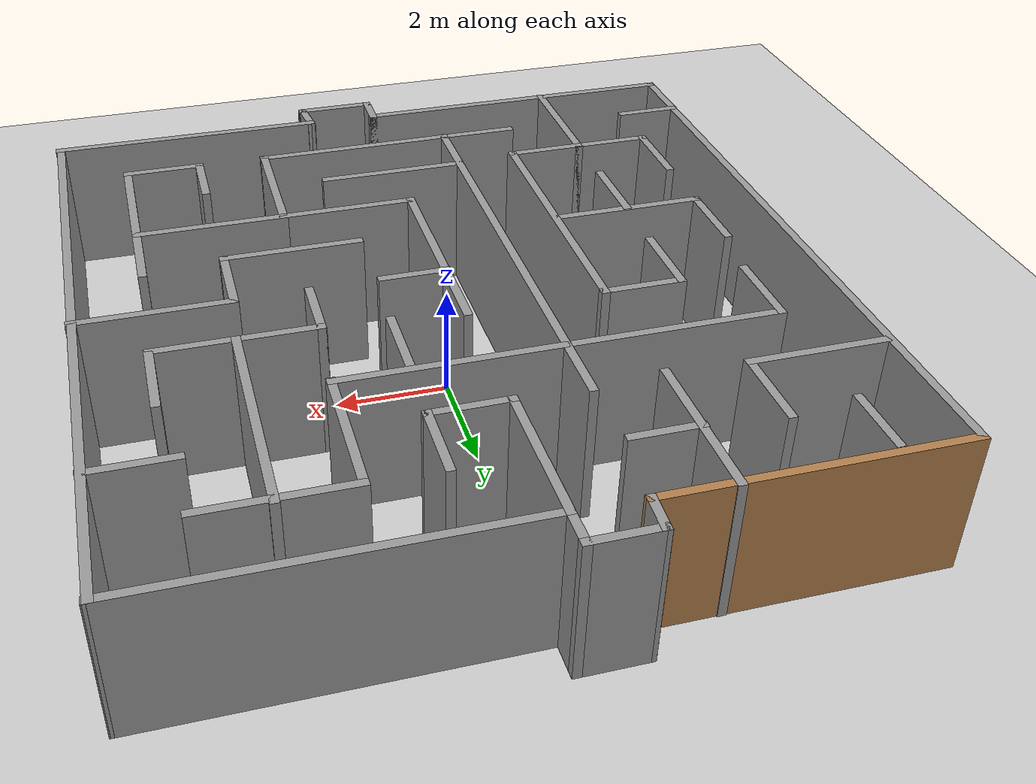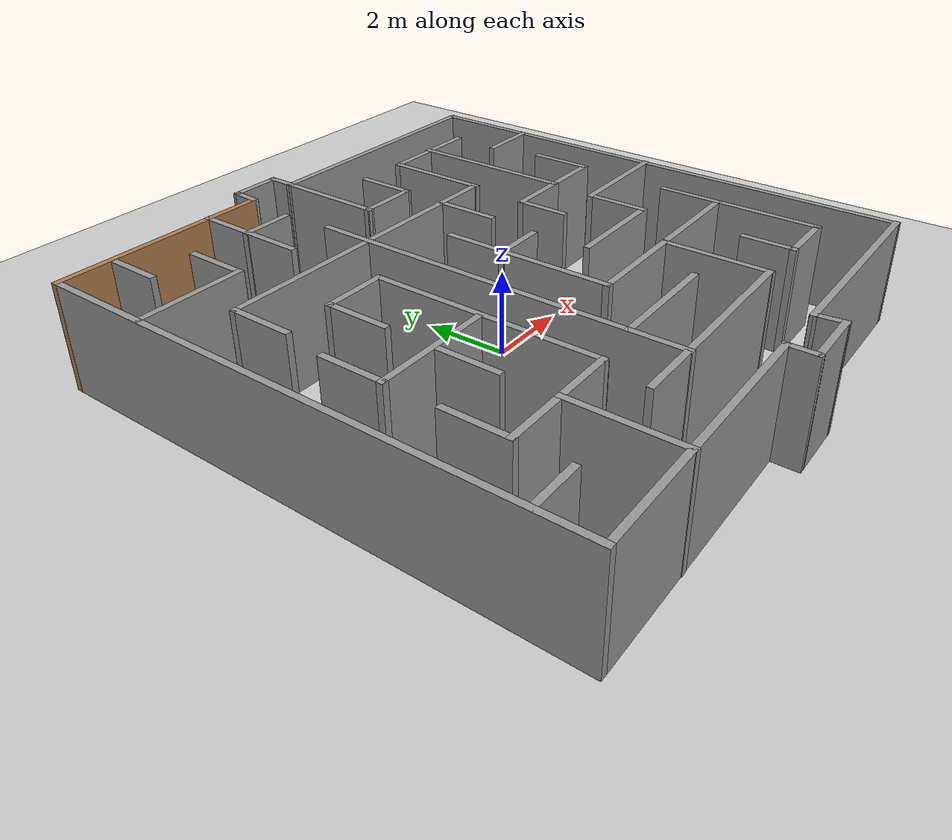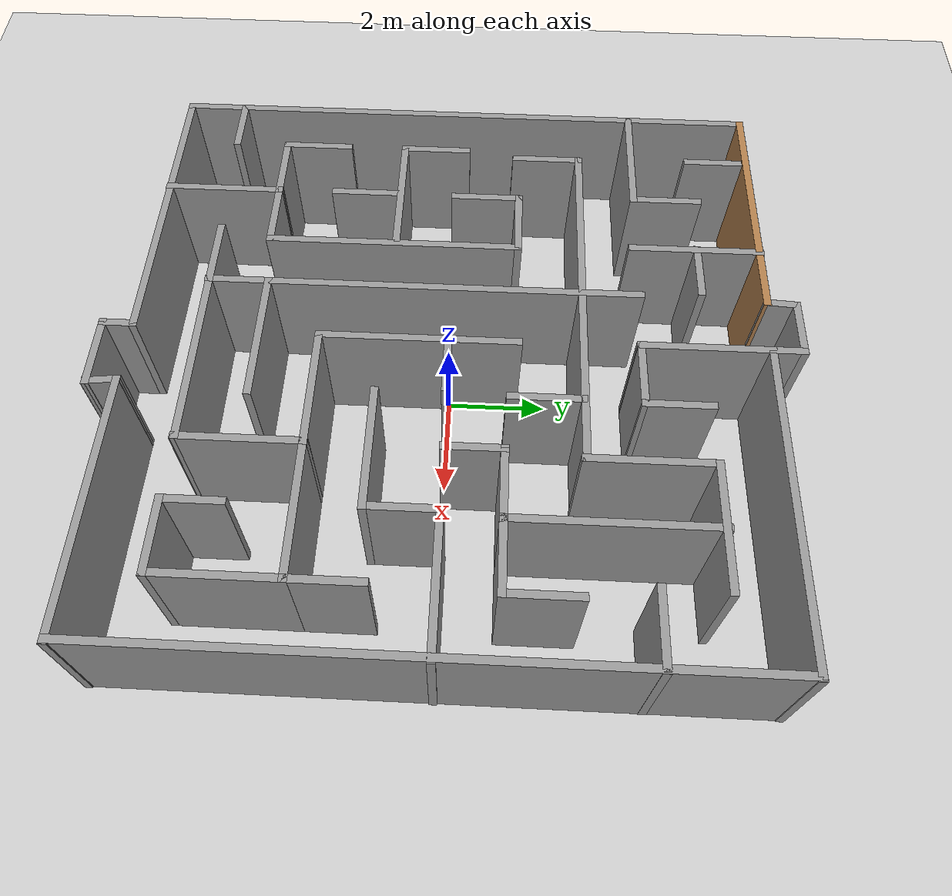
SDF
<sdf version="1.7">
 <world name="default">
  <light name="sun" type="directional">
   <pose>0 0 10 0 -0 0</pose>
   <diffuse>0.8 0.8 0.8 1</diffuse>
   <specular>0.2 0.2 0.2 1</specular>
   <attenuation>
    <range>1000</range>
    <constant>0.9</constant>
    <linear>0.01</linear>
    <quadratic>0.001</quadratic>
   </attenuation>
   <direction>-0.5 0.1 -0.9</direction>
   <spot><inner_angle>0</inner_angle><outer_angle>0</outer_angle><falloff>0</falloff></spot>
  </light>
  <model name="ground_plane">
   <static>1</static>
   <link name="link">
    <collision name="collision">
     <geometry><plane><normal>0 0 1</normal><size>100 100</size></plane></geometry>
     <surface>
      <contact><collide_bitmask>65535</collide_bitmask></contact>
      <friction><ode><mu>100</mu><mu2>50</mu2></ode></friction>
     </surface>
    </collision>
    <visual name="visual">
     <cast_shadows>0</cast_shadows>
     <geometry><plane><normal>0 0 1</normal><size>100 100</size></plane></geometry>
     <material>
      <script><uri>file://media/materials/scripts/gazebo.material</uri><name>Gazebo/Grey</name></script>
     </material>
    </visual>
   </link>
  </model>
  <gravity>0 0 -9.8</gravity>
  <magnetic_field>6e-06 2.3e-05 -4.2e-05</magnetic_field>
  <atmosphere type="adiabatic"/>
  <physics type="ode">
   <max_step_size>0.001</max_step_size>
   <real_time_factor>1</real_time_factor>
   <real_time_update_rate>1000</real_time_update_rate>
  </physics>
  <scene><ambient>0.4 0.4 0.4 1</ambient><background>0.7 0.7 0.7 1</background><shadows>1</shadows></scene>
  <spherical_coordinates>
   <surface_model>EARTH_WGS84</surface_model>
   <latitude_deg>0</latitude_deg>
   <longitude_deg>0</longitude_deg>
   <elevation>0</elevation>
   <heading_deg>0</heading_deg>
  </spherical_coordinates>
  <model name="maze">
   <pose>0.005745 0.020162 0 0 -0 0</pose>
   <link name="Wall_0">
    <collision name="Wall_0_Collision">
     <geometry><box><size>5.15 0.15 2.5</size></box></geometry>
     <pose>0 0 1.25 0 -0 0</pose>
    </collision>
    <visual name="Wall_0_Visual">
     <pose>0 0 1.25 0 -0 0</pose>
     <geometry><box><size>5.15 0.15 2.5</size></box></geometry>
     <material>
      <script><uri>file://media/materials/scripts/gazebo.material</uri><name>Gazebo/Wood</name></script>
      <ambient>1 1 1 1</ambient>
     </material>
     <meta><layer>0</layer></meta>
    </visual>
    <pose>-3.67374 6.19284 0 0 -0 3.14159</pose>
   </link>
   <link name="Wall_14">
    <collision name="Wall_14_Collision">
     <geometry><box><size>1.45136 0.15 2.5</size></box></geometry>
     <pose>0 0 1.25 0 -0 0</pose>
    </collision>
    <visual name="Wall_14_Visual">
     <pose>0 0 1.25 0 -0 0</pose>
     <geometry><box><size>1.45136 0.15 2.5</size></box></geometry>
     <material>
      <script><uri>file://media/materials/scripts/gazebo.material</uri><name>Gazebo/Grey</name></script>
      <ambient>1 1 1 1</ambient>
     </material>
     <meta><layer>0</layer></meta>
    </visual>
    <pose>0.612755 3.66384 0 0 -0 -3.13698</pose>
   </link>
   <link name="Wall_18">
    <collision name="Wall_18_Collision">
     <geometry><box><size>1.4 0.15 2.5</size></box></geometry>
     <pose>0 0 1.25 0 -0 0</pose>
    </collision>
    <visual name="Wall_18_Visual">
     <pose>0 0 1.25 0 -0 0</pose>
     <geometry><box><size>1.4 0.15 2.5</size></box></geometry>
     <material>
      <script><uri>file://media/materials/scripts/gazebo.material</uri><name>Gazebo/Grey</name></script>
      <ambient>1 1 1 1</ambient>
     </material>
     <meta><layer>0</layer></meta>
    </visual>
    <pose>1.26326 4.29184 0 0 -0 1.5708</pose>
   </link>
   <link name="Wall_2">
    <collision name="Wall_2_Collision">
     <geometry><box><size>12.5 0.15 2.5</size></box></geometry>
     <pose>0 0 1.25 0 -0 0</pose>
    </collision>
    <visual name="Wall_2_Visual">
     <pose>0 0 1.25 0 -0 0</pose>
     <geometry><box><size>12.5 0.15 2.5</size></box></geometry>
     <material>
      <script><uri>file://media/materials/scripts/gazebo.material</uri><name>Gazebo/Grey</name></script>
      <ambient>1 1 1 1</ambient>
     </material>
     <meta><layer>0</layer></meta>
    </visual>
    <pose>-6.17375 0.017838 0 0 -0 -1.5708</pose>
   </link>
   <link name="Wall_20">
    <collision name="Wall_20_Collision">
     <geometry><box><size>2.51779 0.15 2.5</size></box></geometry>
     <pose>0 0 1.25 0 -0 0</pose>
    </collision>
    <visual name="Wall_20_Visual">
     <pose>0 0 1.25 0 -0 0</pose>
     <geometry><box><size>2.51779 0.15 2.5</size></box></geometry>
     <material>
      <script><uri>file://media/materials/scripts/gazebo.material</uri><name>Gazebo/Grey</name></script>
      <ambient>1 1 1 1</ambient>
     </material>
     <meta><layer>0</layer></meta>
    </visual>
    <pose>3.63945 4.91217 0 0 -0 0</pose>
   </link>
   <link name="Wall_22">
    <collision name="Wall_22_Collision">
     <geometry><box><size>2.5 0.15 2.5</size></box></geometry>
     <pose>0 0 1.25 0 -0 0</pose>
    </collision>
    <visual name="Wall_22_Visual">
     <pose>0 0 1.25 0 -0 0</pose>
     <geometry><box><size>2.5 0.15 2.5</size></box></geometry>
     <material>
      <script><uri>file://media/materials/scripts/gazebo.material</uri><name>Gazebo/Grey</name></script>
      <ambient>1 1 1 1</ambient>
     </material>
     <meta><layer>0</layer></meta>
    </visual>
    <pose>2.45556 3.71938 0 0 -0 -1.5708</pose>
   </link>
   <link name="Wall_23">
    <collision name="Wall_23_Collision">
     <geometry><box><size>7.48221 0.15 2.5</size></box></geometry>
     <pose>0 0 1.25 0 -0 0</pose>
    </collision>
    <visual name="Wall_23_Visual">
     <pose>0 0 1.25 0 -0 0</pose>
     <geometry><box><size>7.48221 0.15 2.5</size></box></geometry>
     <material>
      <script><uri>file://media/materials/scripts/gazebo.material</uri><name>Gazebo/Grey</name></script>
      <ambient>1 1 1 1</ambient>
     </material>
     <meta><layer>0</layer></meta>
    </visual>
    <pose>-1.21055 2.56217 0 0 -0 3.14159</pose>
   </link>
   <link name="Wall_24">
    <collision name="Wall_24_Collision">
     <geometry><box><size>1.5 0.15 2.5</size></box></geometry>
     <pose>0 0 1.25 0 -0 0</pose>
    </collision>
    <visual name="Wall_24_Visual">
     <pose>0 0 1.25 0 -0 0</pose>
     <geometry><box><size>1.5 0.15 2.5</size></box></geometry>
     <material>
      <script><uri>file://media/materials/scripts/gazebo.material</uri><name>Gazebo/Grey</name></script>
      <ambient>1 1 1 1</ambient>
     </material>
     <meta><layer>0</layer></meta>
    </visual>
    <pose>-4.87665 1.88717 0 0 -0 -1.5708</pose>
   </link>
   <link name="Wall_26">
    <collision name="Wall_26_Collision">
     <geometry><box><size>8.76779 0.15 2.5</size></box></geometry>
     <pose>0 0 1.25 0 -0 0</pose>
    </collision>
    <visual name="Wall_26_Visual">
     <pose>0 0 1.25 0 -0 0</pose>
     <geometry><box><size>8.76779 0.15 2.5</size></box></geometry>
     <material>
      <script><uri>file://media/materials/scripts/gazebo.material</uri><name>Gazebo/Grey</name></script>
      <ambient>1 1 1 1</ambient>
     </material>
     <meta><layer>0</layer></meta>
    </visual>
    <pose>-1.24484 -0.588678 0 0 -0 -1.5708</pose>
   </link>
   <link name="Wall_27">
    <collision name="Wall_27_Collision">
     <geometry><box><size>3.75018 0.15 2.5</size></box></geometry>
     <pose>0 0 1.25 0 -0 0</pose>
    </collision>
    <visual name="Wall_27_Visual">
     <pose>0 0 1.25 0 -0 0</pose>
     <geometry><box><size>3.75018 0.15 2.5</size></box></geometry>
     <material>
      <script><uri>file://media/materials/scripts/gazebo.material</uri><name>Gazebo/Grey</name></script>
      <ambient>1 1 1 1</ambient>
     </material>
     <meta><layer>0</layer></meta>
    </visual>
    <pose>0.555157 -4.87089 0 0 -0 0.004942</pose>
   </link>
   <link name="Wall_28">
    <collision name="Wall_28_Collision">
     <geometry><box><size>2.5 0.15 2.5</size></box></geometry>
     <pose>0 0 1.25 0 -0 0</pose>
    </collision>
    <visual name="Wall_28_Visual">
     <pose>0 0 1.25 0 -0 0</pose>
     <geometry><box><size>2.5 0.15 2.5</size></box></geometry>
     <material>
      <script><uri>file://media/materials/scripts/gazebo.material</uri><name>Gazebo/Grey</name></script>
      <ambient>1 1 1 1</ambient>
     </material>
     <meta><layer>0</layer></meta>
    </visual>
    <pose>2.35516 -3.70478 0 0 -0 1.5708</pose>
   </link>
   <link name="Wall_29">
    <collision name="Wall_29_Collision">
     <geometry><box><size>2.5 0.15 2.5</size></box></geometry>
     <pose>0 0 1.25 0 -0 0</pose>
    </collision>
    <visual name="Wall_29_Visual">
     <pose>0 0 1.25 0 -0 0</pose>
     <geometry><box><size>2.5 0.15 2.5</size></box></geometry>
     <material>
      <script><uri>file://media/materials/scripts/gazebo.material</uri><name>Gazebo/Grey</name></script>
      <ambient>1 1 1 1</ambient>
     </material>
     <meta><layer>0</layer></meta>
    </visual>
    <pose>1.18016 -2.52978 0 0 -0 3.14159</pose>
   </link>
   <link name="Wall_3">
    <collision name="Wall_3_Collision">
     <geometry><box><size>6.25 0.15 2.5</size></box></geometry>
     <pose>0 0 1.25 0 -0 0</pose>
    </collision>
    <visual name="Wall_3_Visual">
     <pose>0 0 1.25 0 -0 0</pose>
     <geometry><box><size>6.25 0.15 2.5</size></box></geometry>
     <material>
      <script><uri>file://media/materials/scripts/gazebo.material</uri><name>Gazebo/Grey</name></script>
      <ambient>1 1 1 1</ambient>
     </material>
     <meta><layer>0</layer></meta>
    </visual>
    <pose>-3.12374 -6.15716 0 0 -0 0</pose>
   </link>
   <link name="Wall_30">
    <collision name="Wall_30_Collision">
     <geometry><box><size>4 0.15 2.5</size></box></geometry>
     <pose>0 0 1.25 0 -0 0</pose>
    </collision>
    <visual name="Wall_30_Visual">
     <pose>0 0 1.25 0 -0 0</pose>
     <geometry><box><size>4 0.15 2.5</size></box></geometry>
     <material>
      <script><uri>file://media/materials/scripts/gazebo.material</uri><name>Gazebo/Grey</name></script>
      <ambient>1 1 1 1</ambient>
     </material>
     <meta><layer>0</layer></meta>
    </visual>
    <pose>0.005157 -0.604783 0 0 -0 1.5708</pose>
   </link>
   <link name="Wall_32">
    <collision name="Wall_32_Collision">
     <geometry><box><size>1.25 0.15 2.5</size></box></geometry>
     <pose>0 0 1.25 0 -0 0</pose>
    </collision>
    <visual name="Wall_32_Visual">
     <pose>0 0 1.25 0 -0 0</pose>
     <geometry><box><size>1.25 0.15 2.5</size></box></geometry>
     <material>
      <script><uri>file://media/materials/scripts/gazebo.material</uri><name>Gazebo/Grey</name></script>
      <ambient>1 1 1 1</ambient>
     </material>
     <meta><layer>0</layer></meta>
    </visual>
    <pose>0.550484 -0.033553 0 0 -0 0</pose>
   </link>
   <link name="Wall_34">
    <collision name="Wall_34_Collision">
     <geometry><box><size>2.75 0.15 2.5</size></box></geometry>
     <pose>0 0 1.25 0 -0 0</pose>
    </collision>
    <visual name="Wall_34_Visual">
     <pose>0 0 1.25 0 -0 0</pose>
     <geometry><box><size>2.75 0.15 2.5</size></box></geometry>
     <material>
      <script><uri>file://media/materials/scripts/gazebo.material</uri><name>Gazebo/Grey</name></script>
      <ambient>1 1 1 1</ambient>
     </material>
     <meta><layer>0</layer></meta>
    </visual>
    <pose>3.65516 -2.52978 0 0 -0 0</pose>
   </link>
   <link name="Wall_35">
    <collision name="Wall_35_Collision">
     <geometry><box><size>1.5 0.15 2.5</size></box></geometry>
     <pose>0 0 1.25 0 -0 0</pose>
    </collision>
    <visual name="Wall_35_Visual">
     <pose>0 0 1.25 0 -0 0</pose>
     <geometry><box><size>1.5 0.15 2.5</size></box></geometry>
     <material>
      <script><uri>file://media/materials/scripts/gazebo.material</uri><name>Gazebo/Grey</name></script>
      <ambient>1 1 1 1</ambient>
     </material>
     <meta><layer>0</layer></meta>
    </visual>
    <pose>4.95516 -1.85478 0 0 -0 1.5708</pose>
   </link>
   <link name="Wall_37">
    <collision name="Wall_37_Collision">
     <geometry><box><size>2.5 0.15 2.5</size></box></geometry>
     <pose>0 0 1.25 0 -0 0</pose>
    </collision>
    <visual name="Wall_37_Visual">
     <pose>0 0 1.25 0 -0 0</pose>
     <geometry><box><size>2.5 0.15 2.5</size></box></geometry>
     <material>
      <script><uri>file://media/materials/scripts/gazebo.material</uri><name>Gazebo/Grey</name></script>
      <ambient>1 1 1 1</ambient>
     </material>
     <meta><layer>0</layer></meta>
    </visual>
    <pose>4.95516 -3.70478 0 0 -0 -1.5708</pose>
   </link>
   <link name="Wall_38">
    <collision name="Wall_38_Collision">
     <geometry><box><size>1.5 0.15 2.5</size></box></geometry>
     <pose>0 0 1.25 0 -0 0</pose>
    </collision>
    <visual name="Wall_38_Visual">
     <pose>0 0 1.25 0 -0 0</pose>
     <geometry><box><size>1.5 0.15 2.5</size></box></geometry>
     <material>
      <script><uri>file://media/materials/scripts/gazebo.material</uri><name>Gazebo/Grey</name></script>
      <ambient>1 1 1 1</ambient>
     </material>
     <meta><layer>0</layer></meta>
    </visual>
    <pose>4.28016 -4.87978 0 0 -0 3.14159</pose>
   </link>
   <link name="Wall_39">
    <collision name="Wall_39_Collision">
     <geometry><box><size>1.25 0.15 2.5</size></box></geometry>
     <pose>0 0 1.25 0 -0 0</pose>
    </collision>
    <visual name="Wall_39_Visual">
     <pose>0 0 1.25 0 -0 0</pose>
     <geometry><box><size>1.25 0.15 2.5</size></box></geometry>
     <material>
      <script><uri>file://media/materials/scripts/gazebo.material</uri><name>Gazebo/Grey</name></script>
      <ambient>1 1 1 1</ambient>
     </material>
     <meta><layer>0</layer></meta>
    </visual>
    <pose>3.60516 -4.32978 0 0 -0 1.5708</pose>
   </link>
   <link name="Wall_41">
    <collision name="Wall_41_Collision">
     <geometry><box><size>1.50047 0.15 2.5</size></box></geometry>
     <pose>0 0 1.25 0 -0 0</pose>
    </collision>
    <visual name="Wall_41_Visual">
     <pose>0 0 1.25 0 -0 0</pose>
     <geometry><box><size>1.50047 0.15 2.5</size></box></geometry>
     <material>
      <script><uri>file://media/materials/scripts/gazebo.material</uri><name>Gazebo/Grey</name></script>
      <ambient>1 1 1 1</ambient>
     </material>
     <meta><layer>0</layer></meta>
    </visual>
    <pose>-1.91984 -4.87978 0 0 -0 -3.14159</pose>
   </link>
   <link name="Wall_43">
    <collision name="Wall_43_Collision">
     <geometry><box><size>2.75 0.15 2.5</size></box></geometry>
     <pose>0 0 1.25 0 -0 0</pose>
    </collision>
    <visual name="Wall_43_Visual">
     <pose>0 0 1.25 0 -0 0</pose>
     <geometry><box><size>2.75 0.15 2.5</size></box></geometry>
     <material>
      <script><uri>file://media/materials/scripts/gazebo.material</uri><name>Gazebo/Grey</name></script>
      <ambient>1 1 1 1</ambient>
     </material>
     <meta><layer>0</layer></meta>
    </visual>
    <pose>-2.45459 4.91087 0 0 -0 -1.5708</pose>
   </link>
   <link name="Wall_45">
    <collision name="Wall_45_Collision">
     <geometry><box><size>1.25 0.15 2.5</size></box></geometry>
     <pose>0 0 1.25 0 -0 0</pose>
    </collision>
    <visual name="Wall_45_Visual">
     <pose>0 0 1.25 0 -0 0</pose>
     <geometry><box><size>1.25 0.15 2.5</size></box></geometry>
     <material>
      <script><uri>file://media/materials/scripts/gazebo.material</uri><name>Gazebo/Grey</name></script>
      <ambient>1 1 1 1</ambient>
     </material>
     <meta><layer>0</layer></meta>
    </visual>
    <pose>-1.92238 4.92996 0 0 -0 0</pose>
   </link>
   <link name="Wall_47">
    <collision name="Wall_47_Collision">
     <geometry><box><size>1.25 0.15 2.5</size></box></geometry>
     <pose>0 0 1.25 0 -0 0</pose>
    </collision>
    <visual name="Wall_47_Visual">
     <pose>0 0 1.25 0 -0 0</pose>
     <geometry><box><size>1.25 0.15 2.5</size></box></geometry>
     <material>
      <script><uri>file://media/materials/scripts/gazebo.material</uri><name>Gazebo/Grey</name></script>
      <ambient>1 1 1 1</ambient>
     </material>
     <meta><layer>0</layer></meta>
    </visual>
    <pose>-4.94524 5.48297 0 0 -0 -1.5708</pose>
   </link>
   <link name="Wall_49">
    <collision name="Wall_49_Collision">
     <geometry><box><size>2.5 0.15 2.5</size></box></geometry>
     <pose>0 0 1.25 0 -0 0</pose>
    </collision>
    <visual name="Wall_49_Visual">
     <pose>0 0 1.25 0 -0 0</pose>
     <geometry><box><size>2.5 0.15 2.5</size></box></geometry>
     <material>
      <script><uri>file://media/materials/scripts/gazebo.material</uri><name>Gazebo/Grey</name></script>
      <ambient>1 1 1 1</ambient>
     </material>
     <meta><layer>0</layer></meta>
    </visual>
    <pose>-4.9622 3.70243 0 0 -0 0</pose>
   </link>
   <link name="Wall_5">
    <collision name="Wall_5_Collision">
     <geometry><box><size>5.10677 0.15 2.5</size></box></geometry>
     <pose>0 0 1.25 0 -0 0</pose>
    </collision>
    <visual name="Wall_5_Visual">
     <pose>0 0 1.25 0 -0 0</pose>
     <geometry><box><size>5.10677 0.15 2.5</size></box></geometry>
     <material>
      <script><uri>file://media/materials/scripts/gazebo.material</uri><name>Gazebo/Grey</name></script>
      <ambient>1 1 1 1</ambient>
     </material>
     <meta><layer>0</layer></meta>
    </visual>
    <pose>3.6886 -6.19792 0 0 -0 -0.003589</pose>
   </link>
   <link name="Wall_50">
    <collision name="Wall_50_Collision">
     <geometry><box><size>1.5 0.15 2.5</size></box></geometry>
     <pose>0 0 1.25 0 -0 0</pose>
    </collision>
    <visual name="Wall_50_Visual">
     <pose>0 0 1.25 0 -0 0</pose>
     <geometry><box><size>1.5 0.15 2.5</size></box></geometry>
     <material>
      <script><uri>file://media/materials/scripts/gazebo.material</uri><name>Gazebo/Grey</name></script>
      <ambient>1 1 1 1</ambient>
     </material>
     <meta><layer>0</layer></meta>
    </visual>
    <pose>-3.7872 4.37743 0 0 -0 1.5708</pose>
   </link>
   <link name="Wall_52">
    <collision name="Wall_52_Collision">
     <geometry><box><size>1.25 0.15 2.5</size></box></geometry>
     <pose>0 0 1.25 0 -0 0</pose>
    </collision>
    <visual name="Wall_52_Visual">
     <pose>0 0 1.25 0 -0 0</pose>
     <geometry><box><size>1.25 0.15 2.5</size></box></geometry>
     <material>
      <script><uri>file://media/materials/scripts/gazebo.material</uri><name>Gazebo/Grey</name></script>
      <ambient>1 1 1 1</ambient>
     </material>
     <meta><layer>0</layer></meta>
    </visual>
    <pose>-5.62278 -4.9437 0 0 -0 0</pose>
   </link>
   <link name="Wall_54">
    <collision name="Wall_54_Collision">
     <geometry><box><size>2.5 0.15 2.5</size></box></geometry>
     <pose>0 0 1.25 0 -0 0</pose>
    </collision>
    <visual name="Wall_54_Visual">
     <pose>0 0 1.25 0 -0 0</pose>
     <geometry><box><size>2.5 0.15 2.5</size></box></geometry>
     <material>
      <script><uri>file://media/materials/scripts/gazebo.material</uri><name>Gazebo/Grey</name></script>
      <ambient>1 1 1 1</ambient>
     </material>
     <meta><layer>0</layer></meta>
    </visual>
    <pose>-3.69991 -4.99623 0 0 -0 1.5708</pose>
   </link>
   <link name="Wall_55">
    <collision name="Wall_55_Collision">
     <geometry><box><size>1.5 0.15 2.5</size></box></geometry>
     <pose>0 0 1.25 0 -0 0</pose>
    </collision>
    <visual name="Wall_55_Visual">
     <pose>0 0 1.25 0 -0 0</pose>
     <geometry><box><size>1.5 0.15 2.5</size></box></geometry>
     <material>
      <script><uri>file://media/materials/scripts/gazebo.material</uri><name>Gazebo/Grey</name></script>
      <ambient>1 1 1 1</ambient>
     </material>
     <meta><layer>0</layer></meta>
    </visual>
    <pose>-3.02492 -3.82123 0 0 -0 0</pose>
   </link>
   <link name="Wall_56">
    <collision name="Wall_56_Collision">
     <geometry><box><size>5.25 0.15 2.5</size></box></geometry>
     <pose>0 0 1.25 0 -0 0</pose>
    </collision>
    <visual name="Wall_56_Visual">
     <pose>0 0 1.25 0 -0 0</pose>
     <geometry><box><size>5.25 0.15 2.5</size></box></geometry>
     <material>
      <script><uri>file://media/materials/scripts/gazebo.material</uri><name>Gazebo/Grey</name></script>
      <ambient>1 1 1 1</ambient>
     </material>
     <meta><layer>0</layer></meta>
    </visual>
    <pose>-2.34992 -1.27123 0 0 -0 1.5708</pose>
   </link>
   <link name="Wall_57">
    <collision name="Wall_57_Collision">
     <geometry><box><size>1.5 0.15 2.5</size></box></geometry>
     <pose>0 0 1.25 0 -0 0</pose>
    </collision>
    <visual name="Wall_57_Visual">
     <pose>0 0 1.25 0 -0 0</pose>
     <geometry><box><size>1.5 0.15 2.5</size></box></geometry>
     <material>
      <script><uri>file://media/materials/scripts/gazebo.material</uri><name>Gazebo/Grey</name></script>
      <ambient>1 1 1 1</ambient>
     </material>
     <meta><layer>0</layer></meta>
    </visual>
    <pose>-3.02492 1.27877 0 0 -0 3.14159</pose>
   </link>
   <link name="Wall_58">
    <collision name="Wall_58_Collision">
     <geometry><box><size>1.5 0.15 2.5</size></box></geometry>
     <pose>0 0 1.25 0 -0 0</pose>
    </collision>
    <visual name="Wall_58_Visual">
     <pose>0 0 1.25 0 -0 0</pose>
     <geometry><box><size>1.5 0.15 2.5</size></box></geometry>
     <material>
      <script><uri>file://media/materials/scripts/gazebo.material</uri><name>Gazebo/Grey</name></script>
      <ambient>1 1 1 1</ambient>
     </material>
     <meta><layer>0</layer></meta>
    </visual>
    <pose>-3.69991 0.603766 0 0 -0 -1.5708</pose>
   </link>
   <link name="Wall_6">
    <collision name="Wall_6_Collision">
     <geometry><box><size>12.5 0.15 2.5</size></box></geometry>
     <pose>0 0 1.25 0 -0 0</pose>
    </collision>
    <visual name="Wall_6_Visual">
     <pose>0 0 1.25 0 -0 0</pose>
     <geometry><box><size>12.5 0.15 2.5</size></box></geometry>
     <material>
      <script><uri>file://media/materials/scripts/gazebo.material</uri><name>Gazebo/Grey</name></script>
      <ambient>1 1 1 1</ambient>
     </material>
     <meta><layer>0</layer></meta>
    </visual>
    <pose>6.14918 -0.031815 0 0 -0 1.5708</pose>
   </link>
   <link name="Wall_60">
    <collision name="Wall_60_Collision">
     <geometry><box><size>2.75 0.15 2.5</size></box></geometry>
     <pose>0 0 1.25 0 -0 0</pose>
    </collision>
    <visual name="Wall_60_Visual">
     <pose>0 0 1.25 0 -0 0</pose>
     <geometry><box><size>2.75 0.15 2.5</size></box></geometry>
     <material>
      <script><uri>file://media/materials/scripts/gazebo.material</uri><name>Gazebo/Grey</name></script>
      <ambient>1 1 1 1</ambient>
     </material>
     <meta><layer>0</layer></meta>
    </visual>
    <pose>-3.75459 -1.22551 0 0 -0 3.14159</pose>
   </link>
   <link name="Wall_61">
    <collision name="Wall_61_Collision">
     <geometry><box><size>1.5 0.15 2.5</size></box></geometry>
     <pose>0 0 1.25 0 -0 0</pose>
    </collision>
    <visual name="Wall_61_Visual">
     <pose>0 0 1.25 0 -0 0</pose>
     <geometry><box><size>1.5 0.15 2.5</size></box></geometry>
     <material>
      <script><uri>file://media/materials/scripts/gazebo.material</uri><name>Gazebo/Grey</name></script>
      <ambient>1 1 1 1</ambient>
     </material>
     <meta><layer>0</layer></meta>
    </visual>
    <pose>-5.05459 -0.550509 0 0 -0 1.5708</pose>
   </link>
   <link name="Wall_63">
    <collision name="Wall_63_Collision">
     <geometry><box><size>1.5 0.15 2.5</size></box></geometry>
     <pose>0 0 1.25 0 -0 0</pose>
    </collision>
    <visual name="Wall_63_Visual">
     <pose>0 0 1.25 0 -0 0</pose>
     <geometry><box><size>1.5 0.15 2.5</size></box></geometry>
     <material>
      <script><uri>file://media/materials/scripts/gazebo.material</uri><name>Gazebo/Grey</name></script>
      <ambient>1 1 1 1</ambient>
     </material>
     <meta><layer>0</layer></meta>
    </visual>
    <pose>-3.71771 -1.93609 0 0 -0 -1.5708</pose>
   </link>
   <link name="Wall_66">
    <collision name="Wall_66_Collision">
     <geometry><box><size>1.5 0.15 2.5</size></box></geometry>
     <pose>0 0 1.25 0 -0 0</pose>
    </collision>
    <visual name="Wall_66_Visual">
     <pose>0 0 1.25 0 -0 0</pose>
     <geometry><box><size>1.5 0.15 2.5</size></box></geometry>
     <material>
      <script><uri>file://media/materials/scripts/gazebo.material</uri><name>Gazebo/Grey</name></script>
      <ambient>1 1 1 1</ambient>
     </material>
     <meta><layer>0</layer></meta>
    </visual>
    <pose>-4.37491 -3.82123 0 0 -0 3.14159</pose>
   </link>
   <link name="Wall_67">
    <collision name="Wall_67_Collision">
     <geometry><box><size>1.5 0.15 2.5</size></box></geometry>
     <pose>0 0 1.25 0 -0 0</pose>
    </collision>
    <visual name="Wall_67_Visual">
     <pose>0 0 1.25 0 -0 0</pose>
     <geometry><box><size>1.5 0.15 2.5</size></box></geometry>
     <material>
      <script><uri>file://media/materials/scripts/gazebo.material</uri><name>Gazebo/Grey</name></script>
      <ambient>1 1 1 1</ambient>
     </material>
     <meta><layer>0</layer></meta>
    </visual>
    <pose>-5.04992 -3.14623 0 0 -0 1.5708</pose>
   </link>
   <link name="Wall_69">
    <collision name="Wall_69_Collision">
     <geometry><box><size>2.75 0.15 2.5</size></box></geometry>
     <pose>0 0 1.25 0 -0 0</pose>
    </collision>
    <visual name="Wall_69_Visual">
     <pose>0 0 1.25 0 -0 0</pose>
     <geometry><box><size>2.75 0.15 2.5</size></box></geometry>
     <material>
      <script><uri>file://media/materials/scripts/gazebo.material</uri><name>Gazebo/Grey</name></script>
      <ambient>1 1 1 1</ambient>
     </material>
     <meta><layer>0</layer></meta>
    </visual>
    <pose>0.055157 -3.69837 0 0 -0 0</pose>
   </link>
   <link name="Wall_7">
    <collision name="Wall_7_Collision">
     <geometry><box><size>6.35677 0.15 2.5</size></box></geometry>
     <pose>0 0 1.25 0 -0 0</pose>
    </collision>
    <visual name="Wall_7_Visual">
     <pose>0 0 1.25 0 -0 0</pose>
     <geometry><box><size>6.35677 0.15 2.5</size></box></geometry>
     <material>
      <script><uri>file://media/materials/scripts/gazebo.material</uri><name>Gazebo/Grey</name></script>
      <ambient>1 1 1 1</ambient>
     </material>
     <meta><layer>0</layer></meta>
    </visual>
    <pose>3.0636 6.15208 0 0 -0 3.13873</pose>
   </link>
   <link name="Wall_71">
    <collision name="Wall_71_Collision">
     <geometry><box><size>2.75 0.15 2.5</size></box></geometry>
     <pose>0 0 1.25 0 -0 0</pose>
    </collision>
    <visual name="Wall_71_Visual">
     <pose>0 0 1.25 0 -0 0</pose>
     <geometry><box><size>2.75 0.15 2.5</size></box></geometry>
     <material>
      <script><uri>file://media/materials/scripts/gazebo.material</uri><name>Gazebo/Grey</name></script>
      <ambient>1 1 1 1</ambient>
     </material>
     <meta><layer>0</layer></meta>
    </visual>
    <pose>4.87375 0.002028 0 0 -0 3.14159</pose>
   </link>
   <link name="Wall_72">
    <collision name="Wall_72_Collision">
     <geometry><box><size>1.5 0.15 2.5</size></box></geometry>
     <pose>0 0 1.25 0 -0 0</pose>
    </collision>
    <visual name="Wall_72_Visual">
     <pose>0 0 1.25 0 -0 0</pose>
     <geometry><box><size>1.5 0.15 2.5</size></box></geometry>
     <material>
      <script><uri>file://media/materials/scripts/gazebo.material</uri><name>Gazebo/Grey</name></script>
      <ambient>1 1 1 1</ambient>
     </material>
     <meta><layer>0</layer></meta>
    </visual>
    <pose>3.57375 -0.672972 0 0 -0 -1.5708</pose>
   </link>
   <link name="Wall_73">
    <collision name="Wall_73_Collision">
     <geometry><box><size>2.5 0.15 2.5</size></box></geometry>
     <pose>0 0 1.25 0 -0 0</pose>
    </collision>
    <visual name="Wall_73_Visual">
     <pose>0 0 1.25 0 -0 0</pose>
     <geometry><box><size>2.5 0.15 2.5</size></box></geometry>
     <material>
      <script><uri>file://media/materials/scripts/gazebo.material</uri><name>Gazebo/Grey</name></script>
      <ambient>1 1 1 1</ambient>
     </material>
     <meta><layer>0</layer></meta>
    </visual>
    <pose>2.39875 -1.34797 0 0 -0 3.14159</pose>
   </link>
   <link name="Wall_75">
    <collision name="Wall_75_Collision">
     <geometry><box><size>1.5 0.15 2.5</size></box></geometry>
     <pose>0 0 1.25 0 -0 0</pose>
    </collision>
    <visual name="Wall_75_Visual">
     <pose>0 0 1.25 0 -0 0</pose>
     <geometry><box><size>1.5 0.15 2.5</size></box></geometry>
     <material>
      <script><uri>file://media/materials/scripts/gazebo.material</uri><name>Gazebo/Grey</name></script>
      <ambient>1 1 1 1</ambient>
     </material>
     <meta><layer>0</layer></meta>
    </visual>
    <pose>1.22802 1.85326 0 0 -0 -1.5708</pose>
   </link>
   <link name="Wall_78">
    <collision name="Wall_78_Collision">
     <geometry><box><size>4 0.15 2.5</size></box></geometry>
     <pose>0 0 1.25 0 -0 0</pose>
    </collision>
    <visual name="Wall_78_Visual">
     <pose>0 0 1.25 0 -0 0</pose>
     <geometry><box><size>4 0.15 2.5</size></box></geometry>
     <material>
      <script><uri>file://media/materials/scripts/gazebo.material</uri><name>Gazebo/Grey</name></script>
      <ambient>1 1 1 1</ambient>
     </material>
     <meta><layer>0</layer></meta>
    </visual>
    <pose>3.68309 3.02275 0 0 -0 -1.5708</pose>
   </link>
   <link name="Wall_79">
    <collision name="Wall_79_Collision">
     <geometry><box><size>1.5 0.15 2.5</size></box></geometry>
     <pose>0 0 1.25 0 -0 0</pose>
    </collision>
    <visual name="Wall_79_Visual">
     <pose>0 0 1.25 0 -0 0</pose>
     <geometry><box><size>1.5 0.15 2.5</size></box></geometry>
     <material>
      <script><uri>file://media/materials/scripts/gazebo.material</uri><name>Gazebo/Grey</name></script>
      <ambient>1 1 1 1</ambient>
     </material>
     <meta><layer>0</layer></meta>
    </visual>
    <pose>3.00809 1.09775 0 0 -0 3.14159</pose>
   </link>
   <link name="Wall_8">
    <collision name="Wall_8_Collision">
     <geometry><box><size>2.65 0.15 2.5</size></box></geometry>
     <pose>0 0 1.25 0 -0 0</pose>
    </collision>
    <visual name="Wall_8_Visual">
     <pose>0 0 1.25 0 -0 0</pose>
     <geometry><box><size>2.65 0.15 2.5</size></box></geometry>
     <material>
      <script><uri>file://media/materials/scripts/gazebo.material</uri><name>Gazebo/Grey</name></script>
      <ambient>1 1 1 1</ambient>
     </material>
     <meta><layer>0</layer></meta>
    </visual>
    <pose>-0.038758 4.91091 0 0 -0 -1.56999</pose>
   </link>
   <link name="Wall_80">
    <collision name="Wall_80_Collision">
     <geometry><box><size>1.25 0.15 2.5</size></box></geometry>
     <pose>0 0 1.25 0 -0 0</pose>
    </collision>
    <visual name="Wall_80_Visual">
     <pose>0 0 1.25 0 -0 0</pose>
     <geometry><box><size>1.25 0.15 2.5</size></box></geometry>
     <material>
      <script><uri>file://media/materials/scripts/gazebo.material</uri><name>Gazebo/Grey</name></script>
      <ambient>1 1 1 1</ambient>
     </material>
     <meta><layer>0</layer></meta>
    </visual>
    <pose>2.33309 0.547753 0 0 -0 -1.5708</pose>
   </link>
   <link name="Wall_82">
    <collision name="Wall_82_Collision">
     <geometry><box><size>1.5 0.15 2.5</size></box></geometry>
     <pose>0 0 1.25 0 -0 0</pose>
    </collision>
    <visual name="Wall_82_Visual">
     <pose>0 0 1.25 0 -0 0</pose>
     <geometry><box><size>1.5 0.15 2.5</size></box></geometry>
     <material>
      <script><uri>file://media/materials/scripts/gazebo.material</uri><name>Gazebo/Grey</name></script>
      <ambient>1 1 1 1</ambient>
     </material>
     <meta><layer>0</layer></meta>
    </visual>
    <pose>4.35809 1.09775 0 0 -0 0</pose>
   </link>
   <link name="Wall_83">
    <collision name="Wall_83_Collision">
     <geometry><box><size>1.5 0.15 2.5</size></box></geometry>
     <pose>0 0 1.25 0 -0 0</pose>
    </collision>
    <visual name="Wall_83_Visual">
     <pose>0 0 1.25 0 -0 0</pose>
     <geometry><box><size>1.5 0.15 2.5</size></box></geometry>
     <material>
      <script><uri>file://media/materials/scripts/gazebo.material</uri><name>Gazebo/Grey</name></script>
      <ambient>1 1 1 1</ambient>
     </material>
     <meta><layer>0</layer></meta>
    </visual>
    <pose>5.03309 1.77275 0 0 -0 1.5708</pose>
   </link>
   <link name="Wall_85">
    <collision name="Wall_85_Collision">
     <geometry><box><size>1.5 0.15 2.5</size></box></geometry>
     <pose>0 0 1.25 0 -0 0</pose>
    </collision>
    <visual name="Wall_85_Visual">
     <pose>0 0 1.25 0 -0 0</pose>
     <geometry><box><size>1.5 0.15 2.5</size></box></geometry>
     <material>
      <script><uri>file://media/materials/scripts/gazebo.material</uri><name>Gazebo/Grey</name></script>
      <ambient>1 1 1 1</ambient>
     </material>
     <meta><layer>0</layer></meta>
    </visual>
    <pose>5.48096 3.72022 0 0 -0 3.14159</pose>
   </link>
   <link name="Wall_87">
    <collision name="Wall_87_Collision">
     <geometry><box><size>0.75 0.15 2.5</size></box></geometry>
     <pose>0 0 1.25 0 -0 0</pose>
    </collision>
    <visual name="Wall_87_Visual">
     <pose>0 0 1.25 0 -0 0</pose>
     <geometry><box><size>0.75 0.15 2.5</size></box></geometry>
     <material>
      <script><uri>file://media/materials/scripts/gazebo.material</uri><name>Gazebo/Grey</name></script>
      <ambient>1 1 1 1</ambient>
     </material>
     <meta><layer>0</layer></meta>
    </visual>
    <pose>-0.03977 6.46098 0 0 -0 1.5708</pose>
   </link>
   <link name="Wall_88">
    <collision name="Wall_88_Collision">
     <geometry><box><size>1.25 0.15 2.5</size></box></geometry>
     <pose>0 0 1.25 0 -0 0</pose>
    </collision>
    <visual name="Wall_88_Visual">
     <pose>0 0 1.25 0 -0 0</pose>
     <geometry><box><size>1.25 0.15 2.5</size></box></geometry>
     <material>
      <script><uri>file://media/materials/scripts/gazebo.material</uri><name>Gazebo/Grey</name></script>
      <ambient>1 1 1 1</ambient>
     </material>
     <meta><layer>0</layer></meta>
    </visual>
    <pose>-0.58977 6.76098 0 0 -0 3.14159</pose>
   </link>
   <link name="Wall_89">
    <collision name="Wall_89_Collision">
     <geometry><box><size>0.719152 0.15 2.5</size></box></geometry>
     <pose>0 0 1.25 0 -0 0</pose>
    </collision>
    <visual name="Wall_89_Visual">
     <pose>0 0 1.25 0 -0 0</pose>
     <geometry><box><size>0.719152 0.15 2.5</size></box></geometry>
     <material>
      <script><uri>file://media/materials/scripts/gazebo.material</uri><name>Gazebo/Grey</name></script>
      <ambient>1 1 1 1</ambient>
     </material>
     <meta><layer>0</layer></meta>
    </visual>
    <pose>-1.15676 6.47691 0 0 -0 -1.63053</pose>
   </link>
   <link name="Wall_91">
    <collision name="Wall_91_Collision">
     <geometry><box><size>0.75 0.15 2.5</size></box></geometry>
     <pose>0 0 1.25 0 -0 0</pose>
    </collision>
    <visual name="Wall_91_Visual">
     <pose>0 0 1.25 0 -0 0</pose>
     <geometry><box><size>0.75 0.15 2.5</size></box></geometry>
     <material>
      <script><uri>file://media/materials/scripts/gazebo.material</uri><name>Gazebo/Grey</name></script>
      <ambient>1 1 1 1</ambient>
     </material>
     <meta><layer>0</layer></meta>
    </visual>
    <pose>-0.073745 -6.45716 0 0 -0 -1.5708</pose>
   </link>
   <link name="Wall_92">
    <collision name="Wall_92_Collision">
     <geometry><box><size>1.5 0.15 2.5</size></box></geometry>
     <pose>0 0 1.25 0 -0 0</pose>
    </collision>
    <visual name="Wall_92_Visual">
     <pose>0 0 1.25 0 -0 0</pose>
     <geometry><box><size>1.5 0.15 2.5</size></box></geometry>
     <material>
      <script><uri>file://media/materials/scripts/gazebo.material</uri><name>Gazebo/Grey</name></script>
      <ambient>1 1 1 1</ambient>
     </material>
     <meta><layer>0</layer></meta>
    </visual>
    <pose>0.601255 -6.75716 0 0 -0 0</pose>
   </link>
   <link name="Wall_93">
    <collision name="Wall_93_Collision">
     <geometry><box><size>0.721961 0.15 2.5</size></box></geometry>
     <pose>0 0 1.25 0 -0 0</pose>
    </collision>
    <visual name="Wall_93_Visual">
     <pose>0 0 1.25 0 -0 0</pose>
     <geometry><box><size>0.721961 0.15 2.5</size></box></geometry>
     <material>
      <script><uri>file://media/materials/scripts/gazebo.material</uri><name>Gazebo/Grey</name></script>
      <ambient>1 1 1 1</ambient>
     </material>
     <meta><layer>0</layer></meta>
    </visual>
    <pose>1.24324 -6.47309 0 0 -0 1.68649</pose>
   </link>
   <static>1</static>
  </model>
 </world>
</sdf>
